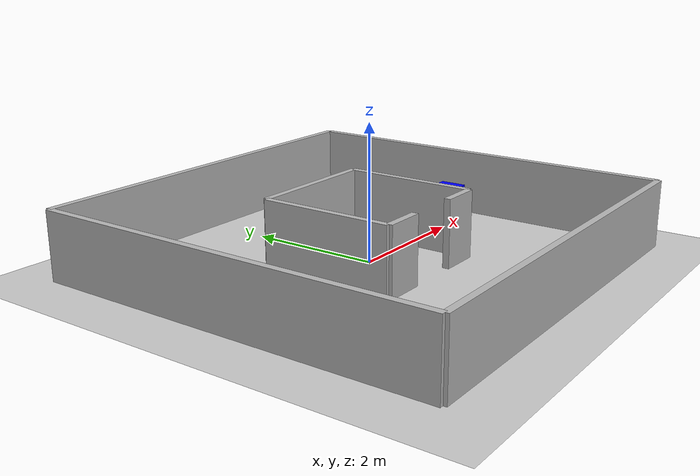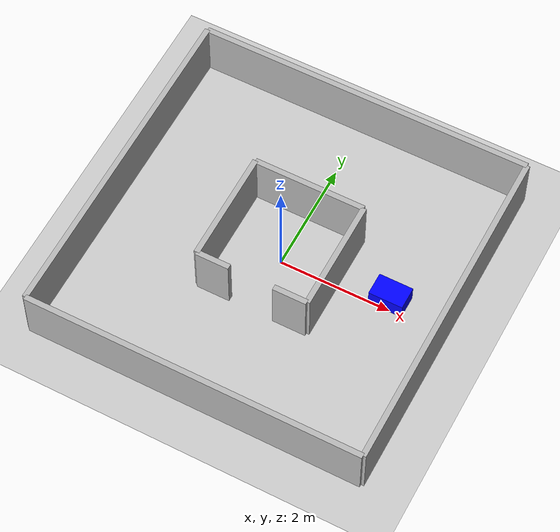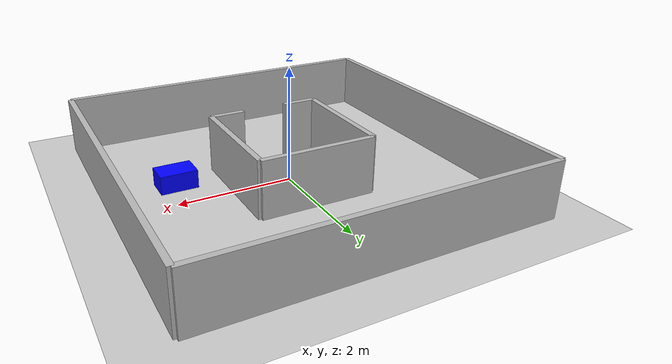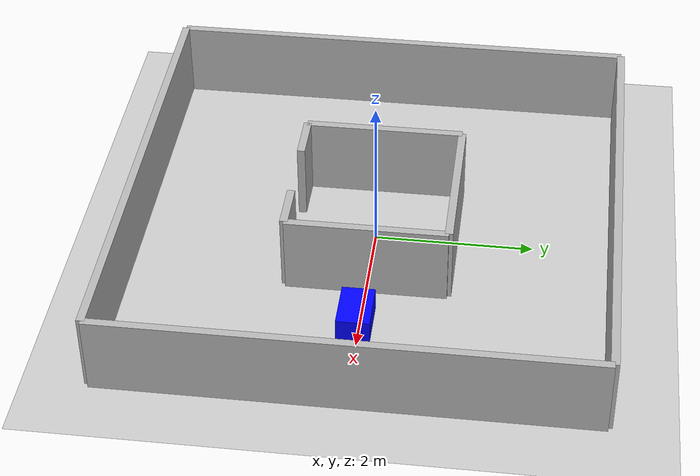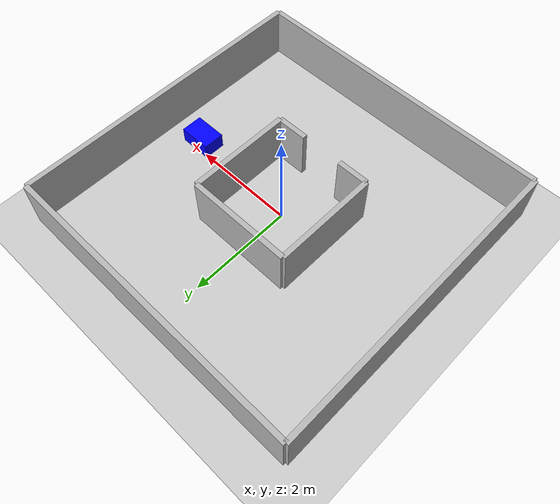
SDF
<?xml version="1.0"?>
<sdf version="1.6">

<world name="planning_world">

  <include>
    <uri>model://ground_plane</uri>
  </include>

  <include>
    <uri>model://sun</uri>
  </include>

  <!-- Outer walls -->

  <model name="outer_left">
    <static>true</static>
    <pose>-3 0 0.5 0 0 0</pose>

    <link name="wall">
      <collision name="collision">
        <geometry>
          <box>
            <size>0.1 6 1</size>
          </box>
        </geometry>
      </collision>

      <visual name="visual">
        <geometry>
          <box>
            <size>0.1 6 1</size>
          </box>
        </geometry>
      </visual>
    </link>
  </model>

  <model name="outer_right">
    <static>true</static>
    <pose>3 0 0.5 0 0 0</pose>

    <link name="wall">
      <collision name="collision">
        <geometry>
          <box>
            <size>0.1 6 1</size>
          </box>
        </geometry>
      </collision>

      <visual name="visual">
        <geometry>
          <box>
            <size>0.1 6 1</size>
          </box>
        </geometry>
      </visual>
    </link>
  </model>

  <model name="outer_top">
    <static>true</static>
    <pose>0 3 0.5 0 0 0</pose>

    <link name="wall">
      <collision name="collision">
        <geometry>
          <box>
            <size>6 0.1 1</size>
          </box>
        </geometry>
      </collision>

      <visual name="visual">
        <geometry>
          <box>
            <size>6 0.1 1</size>
          </box>
        </geometry>
      </visual>
    </link>
  </model>

  <model name="outer_bottom">
    <static>true</static>
    <pose>0 -3 0.5 0 0 0</pose>

    <link name="wall">
      <collision name="collision">
        <geometry>
          <box>
            <size>6 0.1 1</size>
          </box>
        </geometry>
      </collision>

      <visual name="visual">
        <geometry>
          <box>
            <size>6 0.1 1</size>
          </box>
        </geometry>
      </visual>
    </link>
  </model>

  <!-- Inner walls -->
  <model name="inner_left">
    <static>true</static>
    <pose>-1 0 0.5 0 0 0</pose>

    <link name="wall">
      <collision name="collision">
        <geometry>
          <box><size>0.1 2 1</size></box>
        </geometry>
      </collision>

      <visual name="visual">
        <geometry>
          <box><size>0.1 2 1</size></box>
        </geometry>
      </visual>
    </link>
  </model>

  <model name="inner_right">
    <static>true</static>
    <pose>1 0 0.5 0 0 0</pose>

    <link name="wall">
      <collision name="collision">
        <geometry>
          <box><size>0.1 2 1</size></box>
        </geometry>
      </collision>

      <visual name="visual">
        <geometry>
          <box><size>0.1 2 1</size></box>
        </geometry>
      </visual>
    </link>
  </model>

  <model name="inner_top">
    <static>true</static>
    <pose>0 1 0.5 0 0 0</pose>

    <link name="wall">
      <collision name="collision">
        <geometry>
          <box><size>2 0.1 1</size></box>
        </geometry>
      </collision>

      <visual name="visual">
        <geometry>
          <box><size>2 0.1 1</size></box>
        </geometry>
      </visual>
    </link>
  </model>

  <model name="inner_bottom_left">
    <static>true</static>
    <pose>-0.7 -1 0.5 0 0 0</pose>

    <link name="wall">
      <collision name="collision">
        <geometry>
          <box><size>0.6 0.1 1</size></box>
        </geometry>
      </collision>

      <visual name="visual">
        <geometry>
          <box><size>0.6 0.1 1</size></box>
        </geometry>
      </visual>
    </link>
  </model>

  <model name="inner_bottom_right">
    <static>true</static>
    <pose>0.7 -1 0.5 0 0 0</pose>

    <link name="wall">
      <collision name="collision">
        <geometry>
          <box><size>0.6 0.1 1</size></box>
        </geometry>
      </collision>

      <visual name="visual">
        <geometry>
          <box><size>0.6 0.1 1</size></box>
        </geometry>
      </visual>
    </link>
  </model>

  <!-- Dynamic Obstacle -->
  <model name="dynamic_box_obstacle">
		<pose>2.0 0.0 0.5 0 0 0</pose>
		<link name="obs_base_link">
			<inertial>
				<mass>5.0</mass>
				<inertia>
					<ixx>0.083</ixx><ixy>0</ixy><ixz>0</ixz>
					<iyy>0.083</iyy><iyz>0</iyz><izz>0.083</izz>
				</inertia>
			</inertial>
			<collision name="collision">
				<geometry>
					<box><size>0.6 0.4 0.3</size></box>
				</geometry>
			</collision>
			<visual name="visual">
				<geometry>
					<box><size>0.6 0.4 0.3</size></box>
				</geometry>
				<material>
					<ambient>0.0 0.0 1.0 1</ambient>
					<diffuse>0.0 0.0 1.0 1</diffuse>
				</material>
			</visual>
		</link>

		<plugin name="object_controller" filename="libgazebo_ros_planar_move.so">
			<commandTopic>obs_cmd_vel</commandTopic>
			<odometryTopic>obs_odom</odometryTopic>
			<odometryFrame>obs_odom</odometryFrame>
			<odometryRate>20.0</odometryRate>
			<robotBaseFrame>obs_base_link</robotBaseFrame>
		</plugin>
	</model>

</world>

</sdf>
